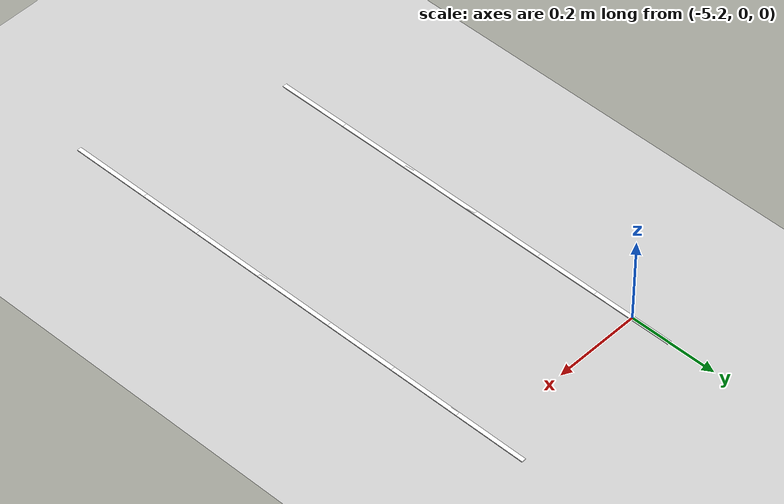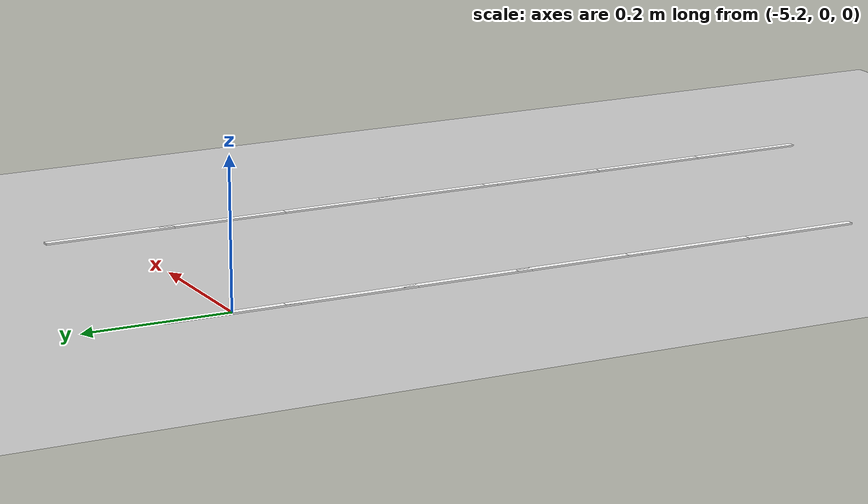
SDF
<sdf version="1.7">
 <world name="default">
  <model name="ground_plane">
   <static>1</static>
   <link name="link">
    <collision name="collision">
     <geometry><plane><normal>0 0 1</normal><size>100 100</size></plane></geometry>
     <surface>
      <contact><collide_bitmask>65535</collide_bitmask></contact>
      <friction><ode><mu>100</mu><mu2>50</mu2></ode></friction>
     </surface>
    </collision>
    <visual name="visual">
     <cast_shadows>0</cast_shadows>
     <geometry><plane><normal>0 0 1</normal><size>100 100</size></plane></geometry>
     <material>
      <script><uri>file://media/materials/scripts/gazebo.material</uri><name>Gazebo/Grey</name></script>
     </material>
    </visual>
   </link>
  </model>
  <model name="lane_line_left_324">
   <static>1</static>
   <link name="link">
    <pose>0 0 -0.004 0 -0 0</pose>
    <visual name="visual">
     <geometry><box><size>0.1833 0.01 0.01</size></box></geometry>
     <material><ambient>1 1 1 1</ambient><diffuse>1 1 1 1</diffuse></material>
    </visual>
    <collision name="collision"><geometry><box><size>0.1833 0.01 0.01</size></box></geometry></collision>
   </link>
   <pose>-4.8 0 0 0 0 -1.5708</pose>
  </model>
  <model name="lane_line_right_324">
   <static>1</static>
   <link name="link">
    <pose>0 0 -0.004 0 -0 0</pose>
    <visual name="visual">
     <geometry><box><size>0.1833 0.01 0.01</size></box></geometry>
     <material><ambient>1 1 1 1</ambient><diffuse>1 1 1 1</diffuse></material>
    </visual>
    <collision name="collision"><geometry><box><size>0.1833 0.01 0.01</size></box></geometry></collision>
   </link>
   <pose>-5.2 0 0 0 0 -1.5708</pose>
  </model>
  <model name="lane_line_left_325">
   <static>1</static>
   <link name="link">
    <pose>0 0 -0.004 0 -0 0</pose>
    <visual name="visual">
     <geometry><box><size>0.1833 0.01 0.01</size></box></geometry>
     <material><ambient>1 1 1 1</ambient><diffuse>1 1 1 1</diffuse></material>
    </visual>
    <collision name="collision"><geometry><box><size>0.1833 0.01 0.01</size></box></geometry></collision>
   </link>
   <pose>-4.8 -0.163265 0 0 0 -1.5708</pose>
  </model>
  <model name="lane_line_right_325">
   <static>1</static>
   <link name="link">
    <pose>0 0 -0.004 0 -0 0</pose>
    <visual name="visual">
     <geometry><box><size>0.1833 0.01 0.01</size></box></geometry>
     <material><ambient>1 1 1 1</ambient><diffuse>1 1 1 1</diffuse></material>
    </visual>
    <collision name="collision"><geometry><box><size>0.1833 0.01 0.01</size></box></geometry></collision>
   </link>
   <pose>-5.2 -0.163265 0 0 0 -1.5708</pose>
  </model>
  <model name="lane_line_left_326">
   <static>1</static>
   <link name="link">
    <pose>0 0 -0.004 0 -0 0</pose>
    <visual name="visual">
     <geometry><box><size>0.1833 0.01 0.01</size></box></geometry>
     <material><ambient>1 1 1 1</ambient><diffuse>1 1 1 1</diffuse></material>
    </visual>
    <collision name="collision"><geometry><box><size>0.1833 0.01 0.01</size></box></geometry></collision>
   </link>
   <pose>-4.8 -0.326531 0 0 0 -1.5708</pose>
  </model>
  <model name="lane_line_right_326">
   <static>1</static>
   <link name="link">
    <pose>0 0 -0.004 0 -0 0</pose>
    <visual name="visual">
     <geometry><box><size>0.1833 0.01 0.01</size></box></geometry>
     <material><ambient>1 1 1 1</ambient><diffuse>1 1 1 1</diffuse></material>
    </visual>
    <collision name="collision"><geometry><box><size>0.1833 0.01 0.01</size></box></geometry></collision>
   </link>
   <pose>-5.2 -0.326531 0 0 0 -1.5708</pose>
  </model>
  <model name="lane_line_left_327">
   <static>1</static>
   <link name="link">
    <pose>0 0 -0.004 0 -0 0</pose>
    <visual name="visual">
     <geometry><box><size>0.1833 0.01 0.01</size></box></geometry>
     <material><ambient>1 1 1 1</ambient><diffuse>1 1 1 1</diffuse></material>
    </visual>
    <collision name="collision"><geometry><box><size>0.1833 0.01 0.01</size></box></geometry></collision>
   </link>
   <pose>-4.8 -0.489796 0 0 0 -1.5708</pose>
  </model>
  <model name="lane_line_right_327">
   <static>1</static>
   <link name="link">
    <pose>0 0 -0.004 0 -0 0</pose>
    <visual name="visual">
     <geometry><box><size>0.1833 0.01 0.01</size></box></geometry>
     <material><ambient>1 1 1 1</ambient><diffuse>1 1 1 1</diffuse></material>
    </visual>
    <collision name="collision"><geometry><box><size>0.1833 0.01 0.01</size></box></geometry></collision>
   </link>
   <pose>-5.2 -0.489796 0 0 0 -1.5708</pose>
  </model>
  <model name="lane_line_left_328">
   <static>1</static>
   <link name="link">
    <pose>0 0 -0.004 0 -0 0</pose>
    <visual name="visual">
     <geometry><box><size>0.1833 0.01 0.01</size></box></geometry>
     <material><ambient>1 1 1 1</ambient><diffuse>1 1 1 1</diffuse></material>
    </visual>
    <collision name="collision"><geometry><box><size>0.1833 0.01 0.01</size></box></geometry></collision>
   </link>
   <pose>-4.8 -0.653061 0 0 0 -1.5708</pose>
  </model>
  <model name="lane_line_right_328">
   <static>1</static>
   <link name="link">
    <pose>0 0 -0.004 0 -0 0</pose>
    <visual name="visual">
     <geometry><box><size>0.1833 0.01 0.01</size></box></geometry>
     <material><ambient>1 1 1 1</ambient><diffuse>1 1 1 1</diffuse></material>
    </visual>
    <collision name="collision"><geometry><box><size>0.1833 0.01 0.01</size></box></geometry></collision>
   </link>
   <pose>-5.2 -0.653061 0 0 0 -1.5708</pose>
  </model>
  <model name="lane_line_left_329">
   <static>1</static>
   <link name="link">
    <pose>0 0 -0.004 0 -0 0</pose>
    <visual name="visual">
     <geometry><box><size>0.1833 0.01 0.01</size></box></geometry>
     <material><ambient>1 1 1 1</ambient><diffuse>1 1 1 1</diffuse></material>
    </visual>
    <collision name="collision"><geometry><box><size>0.1833 0.01 0.01</size></box></geometry></collision>
   </link>
   <pose>-4.8 -0.816327 0 0 0 -1.5708</pose>
  </model>
  <model name="lane_line_right_329">
   <static>1</static>
   <link name="link">
    <pose>0 0 -0.004 0 -0 0</pose>
    <visual name="visual">
     <geometry><box><size>0.1833 0.01 0.01</size></box></geometry>
     <material><ambient>1 1 1 1</ambient><diffuse>1 1 1 1</diffuse></material>
    </visual>
    <collision name="collision"><geometry><box><size>0.1833 0.01 0.01</size></box></geometry></collision>
   </link>
   <pose>-5.2 -0.816327 0 0 0 -1.5708</pose>
  </model>
  <model name="lane_line_left_330">
   <static>1</static>
   <link name="link">
    <pose>0 0 -0.004 0 -0 0</pose>
    <visual name="visual">
     <geometry><box><size>0.1833 0.01 0.01</size></box></geometry>
     <material><ambient>1 1 1 1</ambient><diffuse>1 1 1 1</diffuse></material>
    </visual>
    <collision name="collision"><geometry><box><size>0.1833 0.01 0.01</size></box></geometry></collision>
   </link>
   <pose>-4.8 -0.979592 0 0 0 -1.5708</pose>
  </model>
 </world>
</sdf>
